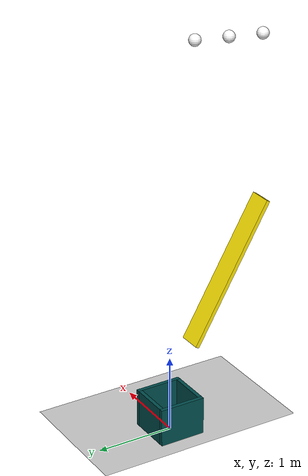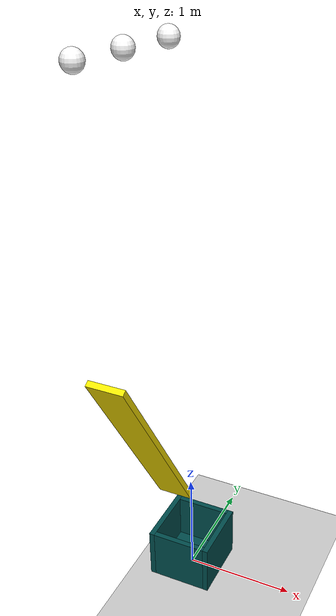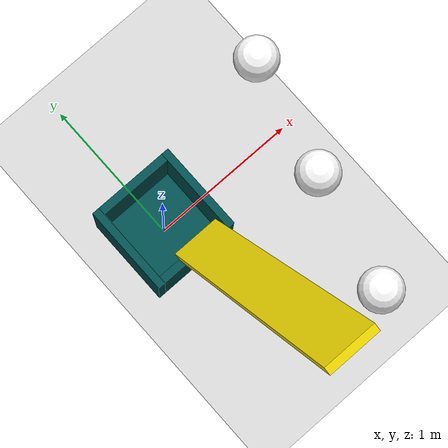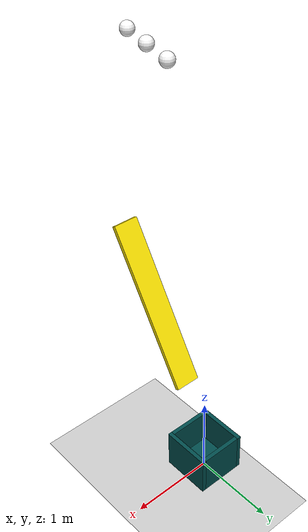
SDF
<?xml version="1.0" ?>

<sdf version="1.6">
  <world name="World_without_Waste">

    <plugin
      filename="gz-sim-physics-system"
      name="gz::sim::systems::Physics">
    </plugin>

    <!-- Contact system loaded as world plugin -->
    <plugin
      filename="gz-sim-contact-system"
      name="gz::sim::systems::Contact">
    </plugin>

    <plugin
      filename="gz-sim-user-commands-system"
      name="gz::sim::systems::UserCommands">
    </plugin>

    <plugin
      filename="gz-sim-scene-broadcaster-system"
      name="gz::sim::systems::SceneBroadcaster">
    </plugin>

    <model name="waste_bin">
      <pose>0 0 0 0 0 0</pose>
      <static>true</static>

      <link name="waste_bin_link">
        <!-- To register collisions with the plugin, reference them in the contact
             sensor (see below) by their name (in this case: "bottom_collision"). -->
        <collision name="bottom_collision">
          <!-- Note: positioned slightly above the ground plane so it does not touch it.
             Otherwise the ground plane would be deleted by the waste bin. -->
          <pose>0 0 0.035 0 0 0</pose>
          <geometry>
            <box>
              <size>0.5 0.5 0.05</size>
            </box>
          </geometry>
        </collision>
        <visual name="bottom_visual">
          <pose>0 0 0.035 0 0 0</pose>
          <geometry>
            <box>
              <size>0.5 0.5 0.05</size>
            </box>
          </geometry>
          <material>
            <ambient>0 0.3 0.3 1</ambient>
            <diffuse>0 0.3 0.3 1</diffuse>
          </material>
        </visual>

        <!-- Side 1 -->
        <collision name="side_1_collision">
          <pose>-0.275 0 0.25 0 0 0</pose>
          <geometry>
            <box>
              <size>0.05 0.6 0.5</size>
            </box>
          </geometry>
        </collision>
        <visual name="side_1_visual">
          <pose>-0.275 0 0.25 0 0 0</pose>
          <geometry>
            <box>
              <size>0.05 0.6 0.5</size>
            </box>
          </geometry>
          <material>
            <ambient>0 0.3 0.3 1</ambient>
            <diffuse>0 0.3 0.3 1</diffuse>
          </material>
        </visual>

        <!-- Side 2 -->
        <collision name="side_2_collision">
          <pose>0.275 0 0.25 0 0 0</pose>
          <geometry>
            <box>
              <size>0.05 0.6 0.5</size>
            </box>
          </geometry>
        </collision>
        <visual name="side_2_visual">
          <pose>0.275 0 0.25 0 0 0</pose>
          <geometry>
            <box>
              <size>0.05 0.6 0.5</size>
            </box>
          </geometry>
          <material>
            <ambient>0 0.3 0.3 1</ambient>
            <diffuse>0 0.3 0.3 1</diffuse>
          </material>
        </visual>

        <!-- Side 3 -->
        <collision name="side_3_collision">
          <pose>0 -0.275 0.25 0 0 0</pose>
          <geometry>
            <box>
              <size>0.5 0.05 0.5</size>
            </box>
          </geometry>
        </collision>
        <visual name="side_3_visual">
          <pose>0 -0.275 0.25 0 0 0</pose>
          <geometry>
            <box>
              <size>0.5 0.05 0.5</size>
            </box>
          </geometry>
          <material>
            <ambient>0 0.3 0.3 1</ambient>
            <diffuse>0 0.3 0.3 1</diffuse>
          </material>
        </visual>

        <!-- Side 4 -->
        <collision name="side_4_collision">
          <pose>0 0.275 0.25 0 0 0</pose>
          <geometry>
            <box>
              <size>0.5 0.05 0.5</size>
            </box>
          </geometry>
        </collision>
        <visual name="side_4_visual">
          <pose>0 0.275 0.25 0 0 0</pose>
          <geometry>
            <box>
              <size>0.5 0.05 0.5</size>
            </box>
          </geometry>
          <material>
            <ambient>0 0.3 0.3 1</ambient>
            <diffuse>0 0.3 0.3 1</diffuse>
          </material>
        </visual>

        <!-- Contact sensor is defined in at least one link of the model... -->
        <sensor name="waste_bin_sensor" type="contact">
          <contact>
            <collision>bottom_collision</collision>
          </contact>
        </sensor>

      </link>

      <!-- ...to which this plugin is attached. -->
      <plugin
        filename="WasteBin"
        name="gz::sim::systems::WasteBin">
        <delay>3</delay>
      </plugin>

    </model>

    <model name="ramp">
      <pose degrees="true">0 -0.8 2 60 0 180</pose>
      <static>true</static>

      <link name="link">
        <collision name="collision">
          <geometry>
            <box>
              <size>0.3 2 0.05</size>
            </box>
          </geometry>
        </collision>
        <visual name="visual">
          <geometry>
            <box>
              <size>0.3 2 0.05</size>
            </box>
          </geometry>
          <material>
            <ambient>1 0.9 0 1</ambient>
            <diffuse>1 0.9 0 1</diffuse>
            <specular>1 0.9 0 1</specular>
          </material>
        </visual>
      </link>
    </model>

    <model name="sphere_1">
      <pose>0.1 -0.4 5 0 0 0</pose>
      <link name="link">
        <collision name="collision">
          <geometry>
            <sphere>
              <radius>0.075</radius>
            </sphere>
          </geometry>
        </collision>
        <visual name="visual">
          <geometry>
            <sphere>
              <radius>0.075</radius>
            </sphere>
          </geometry>
          <material>
            <ambient>1 1 1 1</ambient>
            <diffuse>1 1 1 1</diffuse>
            <specular>1 1 1 1</specular>
          </material>
        </visual>
      </link>
    </model>

    <model name="sphere_2">
      <pose>0 -0.8 5 0 0 0</pose>
      <link name="link">
        <collision name="collision">
          <geometry>
            <sphere>
              <radius>0.075</radius>
            </sphere>
          </geometry>
        </collision>
        <visual name="visual">
          <geometry>
            <sphere>
              <radius>0.075</radius>
            </sphere>
          </geometry>
          <material>
            <ambient>1 1 1 1</ambient>
            <diffuse>1 1 1 1</diffuse>
            <specular>1 1 1 1</specular>
          </material>
        </visual>
      </link>
    </model>

    <model name="sphere_3">
      <pose>-0.1 -1.2 5 0 0 0</pose>
      <link name="link">
        <collision name="collision">
          <geometry>
            <sphere>
              <radius>0.075</radius>
            </sphere>
          </geometry>
        </collision>
        <visual name="visual">
          <geometry>
            <sphere>
              <radius>0.075</radius>
            </sphere>
          </geometry>
          <material>
            <ambient>1 1 1 1</ambient>
            <diffuse>1 1 1 1</diffuse>
            <specular>1 1 1 1</specular>
          </material>
        </visual>
      </link>
    </model>

    <light type="directional" name="sun">
      <cast_shadows>true</cast_shadows>
      <pose>0 0 10 0 0 0</pose>
      <diffuse>1 1 1 1</diffuse>
      <specular>0.5 0.5 0.5 1</specular>
      <attenuation>
        <range>1000</range>
        <constant>0.9</constant>
        <linear>0.01</linear>
        <quadratic>0.001</quadratic>
      </attenuation>
      <direction>0.25 0.1 -0.9</direction>
    </light>

    <model name="ground_plane">
      <static>true</static>
      <link name="link">
        <collision name="collision">
          <geometry>
            <plane>
              <normal>0 0 1</normal>
              <size>100 100</size>
            </plane>
          </geometry>
        </collision>
        <visual name="visual">
          <geometry>
            <plane>
              <normal>0 0 1</normal>
              <size>100 100</size>
            </plane>
          </geometry>
          <material>
            <ambient>0.8 0.8 0.8 1</ambient>
            <diffuse>0.8 0.8 0.8 1</diffuse>
            <specular>0.8 0.8 0.8 1</specular>
          </material>
        </visual>
      </link>
    </model>

  </world>
</sdf>
